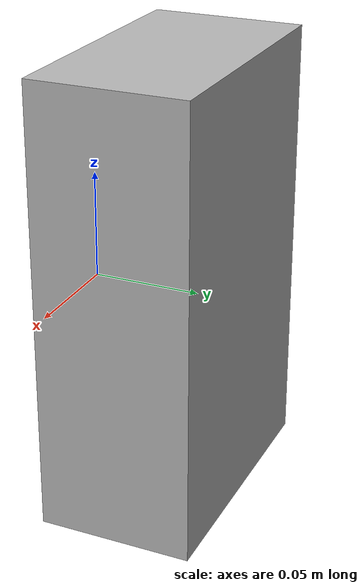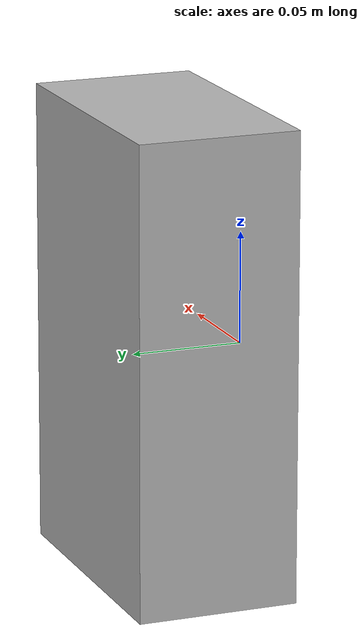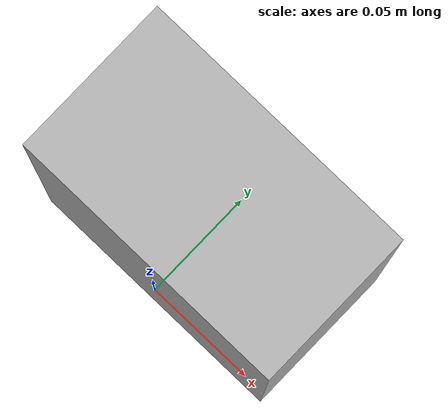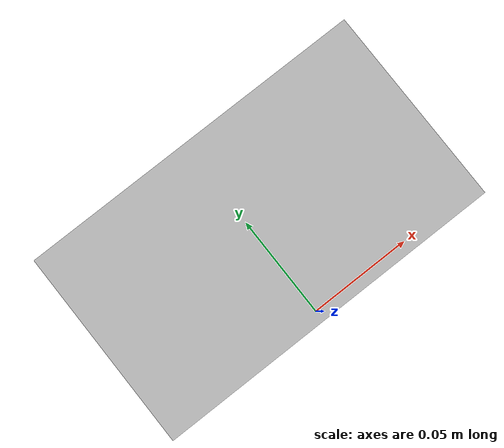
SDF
<?xml version="1.0" ?>
<sdf version="1.4">
  <model name="shelf3_box3_2c">
    <link name="body">
      <pose>0 0 0 0 0 0</pose>
      <inertial>
        <pose>  -0.002715   0.036222   0.005485 0 0 0</pose>
        <mass>0.5</mass>
        <inertia>
          <ixx>0.01</ixx>
          <ixy>0</ixy>
          <ixz>0</ixz>
          <iyy>0.01</iyy>
          <iyz>0</iyz>
          <izz>0.01</izz>
        </inertia>
      </inertial>
      <collision name="collision">
        <geometry>
          <mesh>
            <uri>model://bookshelf/shelf3_items/box3_2c/box3_2c.dae</uri>
          </mesh>
        </geometry>
      </collision>
      <visual name="visual">
        <geometry>
          <mesh>
            <uri>model://bookshelf/shelf3_items/box3_2c/box3_2c.dae</uri>
          </mesh>
        </geometry>
      </visual>
    </link>
  </model>
</sdf>
